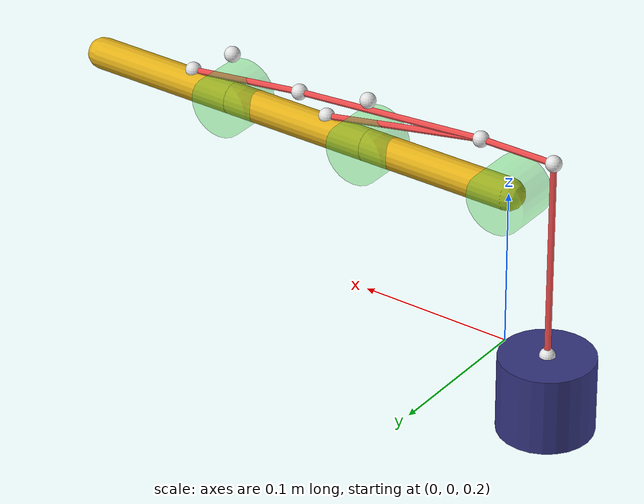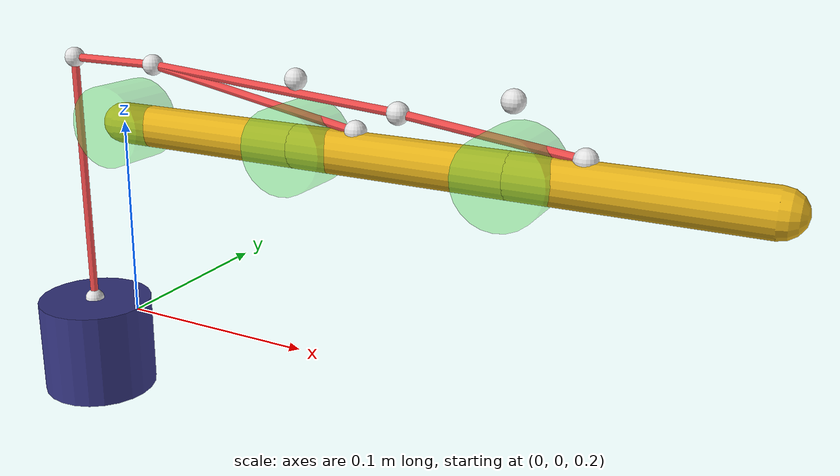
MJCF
<mujoco model="tendon">
        <default>
                <joint axis="0 1 0" range="0 60" limited="true"/>
                <geom type="capsule" size=".01" rgba=".9 .7 .1 1"/>
                <site rgba=".9 .9 .9 1"/>
                <default class="visual_cylinder">
                        <geom type="cylinder" fromto="0 .015 0  0 -.015 0" size=".02" rgba=".3 .9 .3 .4"/>
                </default>
        </default>

        <worldbody>
                <light pos="0 0 1"/>
                <body name="weight" pos="-.03 0 .175">
                        <joint axis="0 0 1" pos="0 0 .025" type="slide"/>
                        <geom type="cylinder" size=".03 .025" density="5000" rgba=".2 .2 .5 1"/>
                        <site name="s1" pos="0 0 .025"/>
                </body>

                <site name="s2" pos="-.03 0 .33"/>

                <body pos="0 0 .3">
                        <joint/>
                        <geom name="g1" class="visual_cylinder"/>
                        <geom fromto="0 0 0  .1 0 0"/>
                        <site name="s3" pos=".02 0 .03"/>

                        <body pos=".1 0 0">
                                <joint/>
                                <geom name="g2" class="visual_cylinder"/>
                                <geom fromto="0 0 0  .1 0 0"/>
                                <site name="s4" pos=".03 0 .01"/>
                                <site name="s5" pos=".05 0 .02"/>
                                <site name="side2" pos="0 0 .03"/>

                                <body pos=".1 0 0">
                                        <joint/>
                                        <geom name="g3" class="visual_cylinder"/>
                                        <geom fromto="0 0 0  .1 0 0"/>
                                        <site name="s6" pos=".03 0 .01"/>
                                        <site name="side3" pos="0 0 .03"/>
                                </body>
                        </body>
                </body>
        </worldbody>

        <tendon>
                <spatial range="0 .33" limited="true" width=".002" rgba=".95 .3 .3 1">
                        <site site="s1"/>
                        <site site="s2"/>
                        <geom geom="g1"/>
                        <site site="s3"/>

                        <pulley divisor="2"/>
                        <site site="s3"/>
                        <geom geom="g2" sidesite="side2"/>
                        <site site="s4"/>

                        <pulley divisor="2"/>
                        <site site="s3"/>
                        <geom geom="g2" sidesite="side2"/>
                        <site site="s5"/>
                        <geom geom="g3" sidesite="side3"/>
                        <site site="s6"/>
                </spatial>
        </tendon>
</mujoco>
